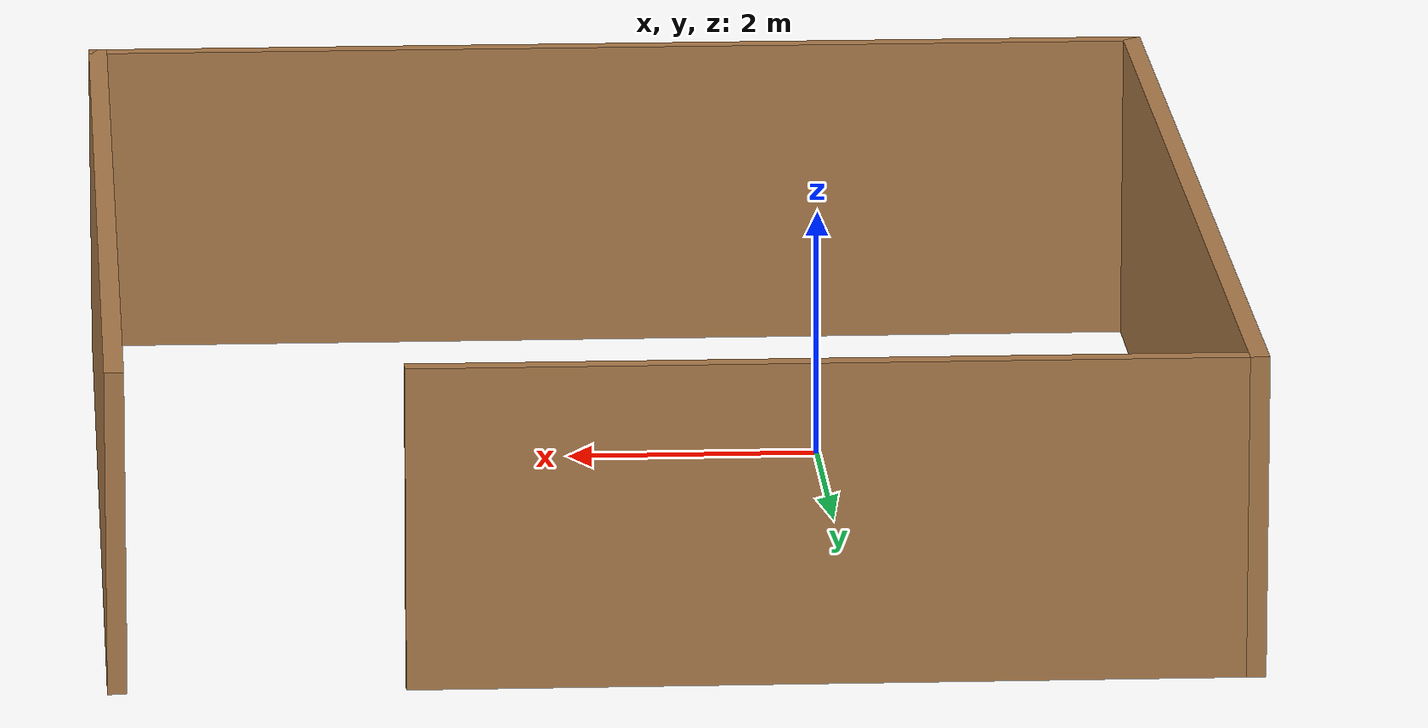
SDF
<?xml version='1.0'?>
<sdf version='1.7'>
  <model name='Wooden_Walls'>
    <pose>1.42 1.375 0 0 -0 0</pose>
    <link name='Wall_22'>
      <collision name='Wall_22_Collision'>
        <geometry>
          <box>
            <size>8.75 0.15 2.5</size>
          </box>
        </geometry>
        <pose>0 0 1.25 0 -0 0</pose>
      </collision>
      <visual name='Wall_22_Visual'>
        <pose>0 0 1.25 0 -0 0</pose>
        <geometry>
          <box>
            <size>8.75 0.15 2.5</size>
          </box>
        </geometry>
        <material>
          <script>
            <uri>file://media/materials/scripts/gazebo.material</uri>
            <name>Gazebo/Wood</name>
          </script>
          <ambient>1 1 1 1</ambient>
        </material>
        <meta>
          <layer>0</layer>
        </meta>
      </visual>
      <pose>0 -5.175 0 0 -0 0</pose>
    </link>
    <link name='Wall_23'>
      <collision name='Wall_23_Collision'>
        <geometry>
          <box>
            <size>10.5 0.15 2.5</size>
          </box>
        </geometry>
        <pose>0 0 1.25 0 -0 0</pose>
      </collision>
      <visual name='Wall_23_Visual'>
        <pose>0 0 1.25 0 -0 0</pose>
        <geometry>
          <box>
            <size>10.5 0.15 2.5</size>
          </box>
        </geometry>
        <material>
          <script>
            <uri>file://media/materials/scripts/gazebo.material</uri>
            <name>Gazebo/Wood</name>
          </script>
          <ambient>1 1 1 1</ambient>
        </material>
        <meta>
          <layer>0</layer>
        </meta>
      </visual>
      <pose>4.3 0 0 0 -0 1.5708</pose>
    </link>
    <link name='Wall_25'>
      <collision name='Wall_25_Collision'>
        <geometry>
          <box>
            <size>10.5 0.15 2.5</size>
          </box>
        </geometry>
        <pose>0 0 1.25 0 -0 0</pose>
      </collision>
      <visual name='Wall_25_Visual'>
        <pose>0 0 1.25 0 -0 0</pose>
        <geometry>
          <box>
            <size>10.5 0.15 2.5</size>
          </box>
        </geometry>
        <material>
          <script>
            <uri>file://media/materials/scripts/gazebo.material</uri>
            <name>Gazebo/Wood</name>
          </script>
          <ambient>1 1 1 1</ambient>
        </material>
        <meta>
          <layer>0</layer>
        </meta>
      </visual>
      <pose>-4.3 0 0 0 -0 1.5708</pose>
    </link>
    <link name='Wall_26'>
      <collision name='Wall_26_Collision'>
        <geometry>
          <box>
            <size>6.5 0.15 2.5</size>
          </box>
        </geometry>
        <pose>0 0 1.25 0 -0 0</pose>
      </collision>
      <visual name='Wall_26_Visual'>
        <pose>0 0 1.25 0 -0 0</pose>
        <geometry>
          <box>
            <size>6.5 0.15 2.5</size>
          </box>
        </geometry>
        <material>
          <script>
            <uri>file://media/materials/scripts/gazebo.material</uri>
            <name>Gazebo/Wood</name>
          </script>
          <ambient>1 1 1 1</ambient>
        </material>
        <meta>
          <layer>0</layer>
        </meta>
      </visual>
      <pose>-1.125 5.175 0 0 -0 0</pose>
    </link>
    <static>1</static>
  </model>
</sdf>
